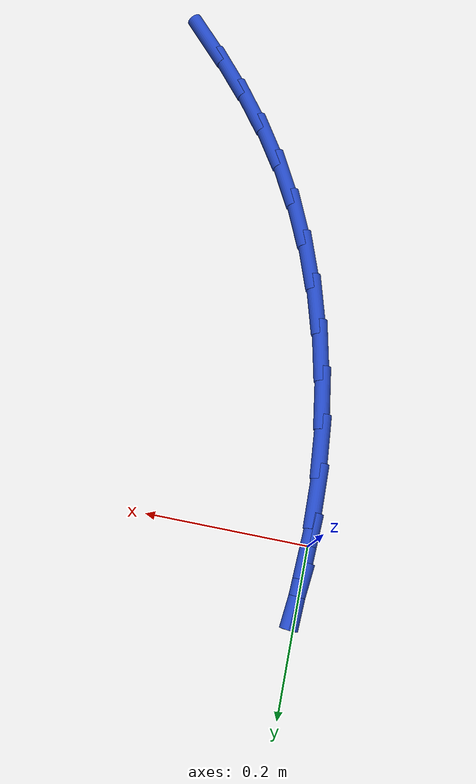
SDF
<sdf version="1.6">
 <world name="default">
  <model name="ground_plane">
   <static>1</static>
   <link name="link">
    <collision name="collision">
     <geometry><plane><normal>0 0 1</normal><size>100 100</size></plane></geometry>
     <surface><friction><ode><mu>100</mu><mu2>50</mu2></ode></friction></surface>
    </collision>
    <visual name="visual">
     <cast_shadows>0</cast_shadows>
     <geometry><plane><normal>0 0 1</normal><size>100 100</size></plane></geometry>
     <material>
      <script><uri>file://media/materials/scripts/gazebo.material</uri><name>Gazebo/WhiteGlow</name></script>
     </material>
    </visual>
   </link>
  </model>
  <model name="line">
   <link name="link_0">
    <pose>6.938893903907228e-18 -9.71445146547012e-17 0.01 0 1.57 1.5231635194960906</pose>
    <collision name="collision">
     <geometry><cylinder><radius>0.01</radius><length>0.08</length></cylinder></geometry>
    </collision>
    <visual name="visual">
     <material>
      <script><name>Gazebo/Blue</name><uri>file://media/materials/scripts/gazebo.material</uri></script>
     </material>
     <geometry><cylinder><radius>0.01</radius><length>0.08</length></cylinder></geometry>
    </visual>
   </link>
   <link name="link_1">
    <pose>0.0028262613182327137 0.05928946178752815 0.01 0 1.57 1.459554150865962</pose>
    <collision name="collision">
     <geometry><cylinder><radius>0.01</radius><length>0.08</length></cylinder></geometry>
    </collision>
    <visual name="visual">
     <material>
      <script><name>Gazebo/Blue</name><uri>file://media/materials/scripts/gazebo.material</uri></script>
     </material>
     <geometry><cylinder><radius>0.01</radius><length>0.08</length></cylinder></geometry>
    </visual>
   </link>
   <link name="link_118">
    <pose>0.2567342061079513 -0.6510460511120109 0.01 0 1.57 -0.8354976913843513</pose>
    <collision name="collision">
     <geometry><cylinder><radius>0.01</radius><length>0.08</length></cylinder></geometry>
    </collision>
    <visual name="visual">
     <material>
      <script><name>Gazebo/Blue</name><uri>file://media/materials/scripts/gazebo.material</uri></script>
     </material>
     <geometry><cylinder><radius>0.01</radius><length>0.08</length></cylinder></geometry>
    </visual>
   </link>
   <link name="link_119">
    <pose>0.2171368381186927 -0.6072681218131138 0.01 0 1.57 -0.8832647305071386</pose>
    <collision name="collision">
     <geometry><cylinder><radius>0.01</radius><length>0.08</length></cylinder></geometry>
    </collision>
    <visual name="visual">
     <material>
      <script><name>Gazebo/Blue</name><uri>file://media/materials/scripts/gazebo.material</uri></script>
     </material>
     <geometry><cylinder><radius>0.01</radius><length>0.08</length></cylinder></geometry>
    </visual>
   </link>
   <link name="link_120">
    <pose>0.1800597086444989 -0.5621178921506789 0.01 0 1.57 -0.9428801550592281</pose>
    <collision name="collision">
     <geometry><cylinder><radius>0.01</radius><length>0.08</length></cylinder></geometry>
    </collision>
    <visual name="visual">
     <material>
      <script><name>Gazebo/Blue</name><uri>file://media/materials/scripts/gazebo.material</uri></script>
     </material>
     <geometry><cylinder><radius>0.01</radius><length>0.08</length></cylinder></geometry>
    </visual>
   </link>
   <link name="link_121">
    <pose>0.14586396106136998 -0.515011637025317 0.01 0 1.57 -1.0132917972345943</pose>
    <collision name="collision">
     <geometry><cylinder><radius>0.01</radius><length>0.08</length></cylinder></geometry>
    </collision>
    <visual name="visual">
     <material>
      <script><name>Gazebo/Blue</name><uri>file://media/materials/scripts/gazebo.material</uri></script>
     </material>
     <geometry><cylinder><radius>0.01</radius><length>0.08</length></cylinder></geometry>
    </visual>
   </link>
   <link name="link_122">
    <pose>0.11491073874530588 -0.4653656313376389 0.01 0 1.57 -1.0904879430018761</pose>
    <collision name="collision">
     <geometry><cylinder><radius>0.01</radius><length>0.08</length></cylinder></geometry>
    </collision>
    <visual name="visual">
     <material>
      <script><name>Gazebo/Blue</name><uri>file://media/materials/scripts/gazebo.material</uri></script>
     </material>
     <geometry><cylinder><radius>0.01</radius><length>0.08</length></cylinder></geometry>
    </visual>
   </link>
   <link name="link_123">
    <pose>0.08750950662259148 -0.4127723857081456 0.01 0 1.57 -1.1645213727921846</pose>
    <collision name="collision">
     <geometry><cylinder><radius>0.01</radius><length>0.08</length></cylinder></geometry>
    </collision>
    <visual name="visual">
     <material>
      <script><name>Gazebo/Blue</name><uri>file://media/materials/scripts/gazebo.material</uri></script>
     </material>
     <geometry><cylinder><radius>0.01</radius><length>0.08</length></cylinder></geometry>
    </visual>
   </link>
   <link name="link_124">
    <pose>0.06375507415511941 -0.35755643659218306 0.01 0 1.57 -1.2340419397645048</pose>
    <collision name="collision">
     <geometry><cylinder><radius>0.01</radius><length>0.08</length></cylinder></geometry>
    </collision>
    <visual name="visual">
     <material>
      <script><name>Gazebo/Blue</name><uri>file://media/materials/scripts/gazebo.material</uri></script>
     </material>
     <geometry><cylinder><radius>0.01</radius><length>0.08</length></cylinder></geometry>
    </visual>
   </link>
   <link name="link_125">
    <pose>0.04368652583604342 -0.3002323557506349 0.01 0 1.57 -1.3002029640799653</pose>
    <collision name="collision">
     <geometry><cylinder><radius>0.01</radius><length>0.08</length></cylinder></geometry>
    </collision>
    <visual name="visual">
     <material>
      <script><name>Gazebo/Blue</name><uri>file://media/materials/scripts/gazebo.material</uri></script>
     </material>
     <geometry><cylinder><radius>0.01</radius><length>0.08</length></cylinder></geometry>
    </visual>
   </link>
   <link name="link_126">
    <pose>0.02734294605203172 -0.24131471530752557 0.01 0 1.57 -1.364119674206764</pose>
    <collision name="collision">
     <geometry><cylinder><radius>0.01</radius><length>0.08</length></cylinder></geometry>
    </collision>
    <visual name="visual">
     <material>
      <script><name>Gazebo/Blue</name><uri>file://media/materials/scripts/gazebo.material</uri></script>
     </material>
     <geometry><cylinder><radius>0.01</radius><length>0.08</length></cylinder></geometry>
    </visual>
   </link>
   <link name="link_127">
    <pose>0.014763419189753234 -0.1813180873868824 0.01 0 1.57 -1.426880148178414</pose>
    <collision name="collision">
     <geometry><cylinder><radius>0.01</radius><length>0.08</length></cylinder></geometry>
    </collision>
    <visual name="visual">
     <material>
      <script><name>Gazebo/Blue</name><uri>file://media/materials/scripts/gazebo.material</uri></script>
     </material>
     <geometry><cylinder><radius>0.01</radius><length>0.08</length></cylinder></geometry>
    </visual>
   </link>
   <link name="link_128">
    <pose>0.005987029635876148 -0.12075704411273 0.01 0 1.57 -1.4895681603408137</pose>
    <collision name="collision">
     <geometry><cylinder><radius>0.01</radius><length>0.08</length></cylinder></geometry>
    </collision>
    <visual name="visual">
     <material>
      <script><name>Gazebo/Blue</name><uri>file://media/materials/scripts/gazebo.material</uri></script>
     </material>
     <geometry><cylinder><radius>0.01</radius><length>0.08</length></cylinder></geometry>
    </visual>
   </link>
   <link name="link_129">
    <pose>0.00105286177706892 -0.06014615760909408 0.01 0 1.57 -1.5532930598041474</pose>
    <collision name="collision">
     <geometry><cylinder><radius>0.01</radius><length>0.08</length></cylinder></geometry>
    </collision>
    <visual name="visual">
     <material>
      <script><name>Gazebo/Blue</name><uri>file://media/materials/scripts/gazebo.material</uri></script>
     </material>
     <geometry><cylinder><radius>0.01</radius><length>0.08</length></cylinder></geometry>
    </visual>
   </link>
   <link name="link_130">
    <pose>-1.3877787807814457e-17 1.3877787807814457e-17 0.01 0 1.57 1.522369101371667</pose>
    <collision name="collision">
     <geometry><cylinder><radius>0.01</radius><length>0.08</length></cylinder></geometry>
    </collision>
    <visual name="visual">
     <material>
      <script><name>Gazebo/Blue</name><uri>file://media/materials/scripts/gazebo.material</uri></script>
     </material>
     <geometry><cylinder><radius>0.01</radius><length>0.08</length></cylinder></geometry>
    </visual>
   </link>
   <link name="link_131">
    <pose>0.0028675286913378145 0.05916685659052665 0.01 0 1.57 1.5223691013716674</pose>
    <collision name="collision">
     <geometry><cylinder><radius>0.01</radius><length>0.08</length></cylinder></geometry>
    </collision>
    <visual name="visual">
     <material>
      <script><name>Gazebo/Blue</name><uri>file://media/materials/scripts/gazebo.material</uri></script>
     </material>
     <geometry><cylinder><radius>0.01</radius><length>0.08</length></cylinder></geometry>
    </visual>
   </link>
  </model>
 </world>
</sdf>
